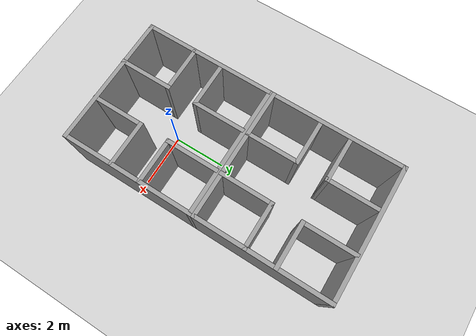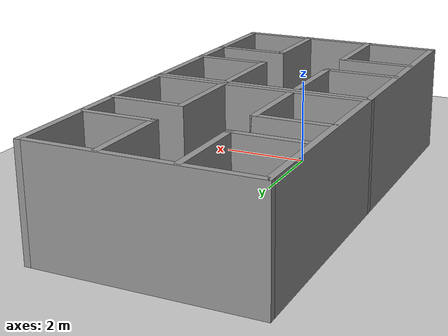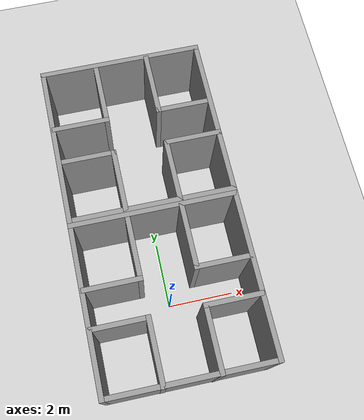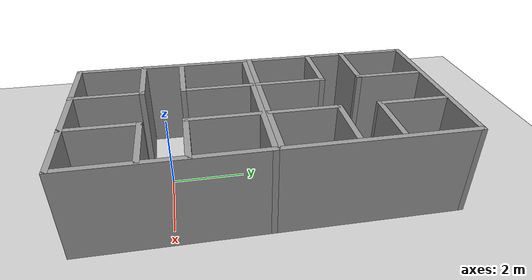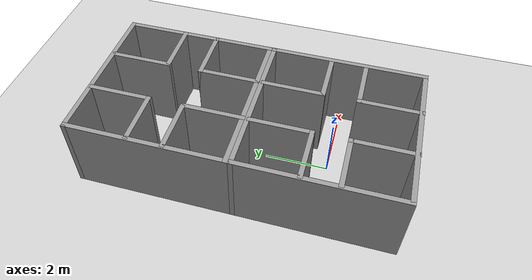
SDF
<sdf version="1.6">
 <world name="default">
  <light name="sun" type="directional">
   <pose>0 0 10 0 -0 0</pose>
   <diffuse>0.8 0.8 0.8 1</diffuse>
   <specular>0.2 0.2 0.2 1</specular>
   <attenuation>
    <range>1000</range>
    <constant>0.9</constant>
    <linear>0.01</linear>
    <quadratic>0.001</quadratic>
   </attenuation>
   <direction>-0.5 0.1 -0.9</direction>
  </light>
  <model name="ground_plane">
   <static>1</static>
   <link name="link">
    <collision name="collision">
     <geometry><plane><normal>0 0 1</normal><size>100 100</size></plane></geometry>
     <surface>
      <contact><collide_bitmask>65535</collide_bitmask></contact>
      <friction><ode><mu>100</mu><mu2>50</mu2></ode></friction>
     </surface>
    </collision>
    <visual name="visual">
     <cast_shadows>0</cast_shadows>
     <geometry><plane><normal>0 0 1</normal><size>100 100</size></plane></geometry>
     <material>
      <script><uri>file://media/materials/scripts/gazebo.material</uri><name>Gazebo/Grey</name></script>
     </material>
    </visual>
   </link>
  </model>
  <gravity>0 0 -9.8</gravity>
  <magnetic_field>6e-06 2.3e-05 -4.2e-05</magnetic_field>
  <atmosphere type="adiabatic"/>
  <physics name="default_physics" default="0" type="ode">
   <max_step_size>0.001</max_step_size>
   <real_time_factor>1</real_time_factor>
   <real_time_update_rate>1000</real_time_update_rate>
  </physics>
  <scene><ambient>0.4 0.4 0.4 1</ambient><background>0.7 0.7 0.7 1</background><shadows>1</shadows></scene>
  <spherical_coordinates>
   <surface_model>EARTH_WGS84</surface_model>
   <latitude_deg>0</latitude_deg>
   <longitude_deg>0</longitude_deg>
   <elevation>0</elevation>
   <heading_deg>0</heading_deg>
  </spherical_coordinates>
  <model name="train_ma_1">
   <link name="Wall_117">
    <collision name="Wall_117_Collision">
     <geometry><box><size>5 0.15 2.5</size></box></geometry>
     <pose>0 0 1.25 0 -0 0</pose>
    </collision>
    <visual name="Wall_117_Visual">
     <pose>0 0 1.25 0 -0 0</pose>
     <geometry><box><size>5 0.15 2.5</size></box></geometry>
     <material>
      <script><uri>file://media/materials/scripts/gazebo.material</uri><name>Gazebo/Grey</name></script>
      <ambient>1 1 1 1</ambient>
     </material>
     <meta><layer>0</layer></meta>
    </visual>
    <pose>-2.425 0.005246 0 0 0 -1.5708</pose>
   </link>
   <link name="Wall_118">
    <collision name="Wall_118_Collision">
     <geometry><box><size>5 0.15 2.5</size></box></geometry>
     <pose>0 0 1.25 0 -0 0</pose>
    </collision>
    <visual name="Wall_118_Visual">
     <pose>0 0 1.25 0 -0 0</pose>
     <geometry><box><size>5 0.15 2.5</size></box></geometry>
     <material>
      <script><uri>file://media/materials/scripts/gazebo.material</uri><name>Gazebo/Grey</name></script>
      <ambient>1 1 1 1</ambient>
     </material>
     <meta><layer>0</layer></meta>
    </visual>
    <pose>0 -2.41975 0 0 -0 0</pose>
   </link>
   <link name="Wall_119">
    <collision name="Wall_119_Collision">
     <geometry><box><size>5 0.15 2.5</size></box></geometry>
     <pose>0 0 1.25 0 -0 0</pose>
    </collision>
    <visual name="Wall_119_Visual">
     <pose>0 0 1.25 0 -0 0</pose>
     <geometry><box><size>5 0.15 2.5</size></box></geometry>
     <material>
      <script><uri>file://media/materials/scripts/gazebo.material</uri><name>Gazebo/Grey</name></script>
      <ambient>1 1 1 1</ambient>
     </material>
     <meta><layer>0</layer></meta>
    </visual>
    <pose>2.425 0.005246 0 0 -0 1.5708</pose>
   </link>
   <link name="Wall_120">
    <collision name="Wall_120_Collision">
     <geometry><box><size>5 0.15 2.5</size></box></geometry>
     <pose>0 0 1.25 0 -0 0</pose>
    </collision>
    <visual name="Wall_120_Visual">
     <pose>0 0 1.25 0 -0 0</pose>
     <geometry><box><size>5 0.15 2.5</size></box></geometry>
     <material>
      <script><uri>file://media/materials/scripts/gazebo.material</uri><name>Gazebo/Grey</name></script>
      <ambient>1 1 1 1</ambient>
     </material>
     <meta><layer>0</layer></meta>
    </visual>
    <pose>0 2.43025 0 0 -0 3.14159</pose>
   </link>
   <link name="Wall_135">
    <collision name="Wall_135_Collision">
     <geometry><box><size>2 0.15 2.5</size></box></geometry>
     <pose>0 0 1.25 0 -0 0</pose>
    </collision>
    <visual name="Wall_135_Visual">
     <pose>0 0 1.25 0 -0 0</pose>
     <geometry><box><size>2 0.15 2.5</size></box></geometry>
     <material>
      <script><uri>file://media/materials/scripts/gazebo.material</uri><name>Gazebo/Grey</name></script>
      <ambient>1 1 1 1</ambient>
     </material>
     <meta><layer>0</layer></meta>
    </visual>
    <pose>-0.780104 1.44475 0 0 -0 1.5708</pose>
   </link>
   <link name="Wall_137">
    <collision name="Wall_137_Collision">
     <geometry><box><size>2 0.15 2.5</size></box></geometry>
     <pose>0 0 1.25 0 -0 0</pose>
    </collision>
    <visual name="Wall_137_Visual">
     <pose>0 0 1.25 0 -0 0</pose>
     <geometry><box><size>2 0.15 2.5</size></box></geometry>
     <material>
      <script><uri>file://media/materials/scripts/gazebo.material</uri><name>Gazebo/Grey</name></script>
      <ambient>1 1 1 1</ambient>
     </material>
     <meta><layer>0</layer></meta>
    </visual>
    <pose>0.819896 1.44475 0 0 0 -1.5708</pose>
   </link>
   <link name="Wall_138">
    <collision name="Wall_138_Collision">
     <geometry><box><size>1.75 0.15 2.5</size></box></geometry>
     <pose>0 0 1.25 0 -0 0</pose>
    </collision>
    <visual name="Wall_138_Visual">
     <pose>0 0 1.25 0 -0 0</pose>
     <geometry><box><size>1.75 0.15 2.5</size></box></geometry>
     <material>
      <script><uri>file://media/materials/scripts/gazebo.material</uri><name>Gazebo/Grey</name></script>
      <ambient>1 1 1 1</ambient>
     </material>
     <meta><layer>0</layer></meta>
    </visual>
    <pose>1.6199 0.519754 0 0 -0 0</pose>
   </link>
   <link name="Wall_140">
    <collision name="Wall_140_Collision">
     <geometry><box><size>1.75 0.15 2.5</size></box></geometry>
     <pose>0 0 1.25 0 -0 0</pose>
    </collision>
    <visual name="Wall_140_Visual">
     <pose>0 0 1.25 0 -0 0</pose>
     <geometry><box><size>1.75 0.15 2.5</size></box></geometry>
     <material>
      <script><uri>file://media/materials/scripts/gazebo.material</uri><name>Gazebo/Grey</name></script>
      <ambient>1 1 1 1</ambient>
     </material>
     <meta><layer>0</layer></meta>
    </visual>
    <pose>1.6199 -0.580246 0 0 -0 3.14159</pose>
   </link>
   <link name="Wall_141">
    <collision name="Wall_141_Collision">
     <geometry><box><size>2 0.15 2.5</size></box></geometry>
     <pose>0 0 1.25 0 -0 0</pose>
    </collision>
    <visual name="Wall_141_Visual">
     <pose>0 0 1.25 0 -0 0</pose>
     <geometry><box><size>2 0.15 2.5</size></box></geometry>
     <material>
      <script><uri>file://media/materials/scripts/gazebo.material</uri><name>Gazebo/Grey</name></script>
      <ambient>1 1 1 1</ambient>
     </material>
     <meta><layer>0</layer></meta>
    </visual>
    <pose>0.819896 -1.50525 0 0 0 -1.5708</pose>
   </link>
   <link name="Wall_143">
    <collision name="Wall_143_Collision">
     <geometry><box><size>2 0.15 2.5</size></box></geometry>
     <pose>0 0 1.25 0 -0 0</pose>
    </collision>
    <visual name="Wall_143_Visual">
     <pose>0 0 1.25 0 -0 0</pose>
     <geometry><box><size>2 0.15 2.5</size></box></geometry>
     <material>
      <script><uri>file://media/materials/scripts/gazebo.material</uri><name>Gazebo/Grey</name></script>
      <ambient>1 1 1 1</ambient>
     </material>
     <meta><layer>0</layer></meta>
    </visual>
    <pose>-0.780104 -1.50525 0 0 -0 1.5708</pose>
   </link>
   <link name="Wall_144">
    <collision name="Wall_144_Collision">
     <geometry><box><size>1.75 0.15 2.5</size></box></geometry>
     <pose>0 0 1.25 0 -0 0</pose>
    </collision>
    <visual name="Wall_144_Visual">
     <pose>0 0 1.25 0 -0 0</pose>
     <geometry><box><size>1.75 0.15 2.5</size></box></geometry>
     <material>
      <script><uri>file://media/materials/scripts/gazebo.material</uri><name>Gazebo/Grey</name></script>
      <ambient>1 1 1 1</ambient>
     </material>
     <meta><layer>0</layer></meta>
    </visual>
    <pose>-1.5801 -0.580246 0 0 -0 3.14159</pose>
   </link>
   <link name="Wall_146">
    <collision name="Wall_146_Collision">
     <geometry><box><size>1.75 0.15 2.5</size></box></geometry>
     <pose>0 0 1.25 0 -0 0</pose>
    </collision>
    <visual name="Wall_146_Visual">
     <pose>0 0 1.25 0 -0 0</pose>
     <geometry><box><size>1.75 0.15 2.5</size></box></geometry>
     <material>
      <script><uri>file://media/materials/scripts/gazebo.material</uri><name>Gazebo/Grey</name></script>
      <ambient>1 1 1 1</ambient>
     </material>
     <meta><layer>0</layer></meta>
    </visual>
    <pose>-1.5801 0.519754 0 0 -0 3.14159</pose>
   </link>
   <static>1</static>
  </model>
  <model name="train_ma_1_0">
   <pose>0 5 0 0 -0 0</pose>
   <link name="Wall_117">
    <collision name="Wall_117_Collision">
     <geometry><box><size>5 0.15 2.5</size></box></geometry>
     <pose>0 0 1.25 0 -0 0</pose>
    </collision>
    <visual name="Wall_117_Visual">
     <pose>0 0 1.25 0 -0 0</pose>
     <geometry><box><size>5 0.15 2.5</size></box></geometry>
     <material>
      <script><uri>file://media/materials/scripts/gazebo.material</uri><name>Gazebo/Grey</name></script>
      <ambient>1 1 1 1</ambient>
     </material>
     <meta><layer>0</layer></meta>
    </visual>
    <pose>-2.425 0.005246 0 0 0 -1.5708</pose>
   </link>
   <link name="Wall_118">
    <collision name="Wall_118_Collision">
     <geometry><box><size>5 0.15 2.5</size></box></geometry>
     <pose>0 0 1.25 0 -0 0</pose>
    </collision>
    <visual name="Wall_118_Visual">
     <pose>0 0 1.25 0 -0 0</pose>
     <geometry><box><size>5 0.15 2.5</size></box></geometry>
     <material>
      <script><uri>file://media/materials/scripts/gazebo.material</uri><name>Gazebo/Grey</name></script>
      <ambient>1 1 1 1</ambient>
     </material>
     <meta><layer>0</layer></meta>
    </visual>
    <pose>0 -2.41975 0 0 -0 0</pose>
   </link>
   <link name="Wall_119">
    <collision name="Wall_119_Collision">
     <geometry><box><size>5 0.15 2.5</size></box></geometry>
     <pose>0 0 1.25 0 -0 0</pose>
    </collision>
    <visual name="Wall_119_Visual">
     <pose>0 0 1.25 0 -0 0</pose>
     <geometry><box><size>5 0.15 2.5</size></box></geometry>
     <material>
      <script><uri>file://media/materials/scripts/gazebo.material</uri><name>Gazebo/Grey</name></script>
      <ambient>1 1 1 1</ambient>
     </material>
     <meta><layer>0</layer></meta>
    </visual>
    <pose>2.425 0.005246 0 0 -0 1.5708</pose>
   </link>
   <link name="Wall_120">
    <collision name="Wall_120_Collision">
     <geometry><box><size>5 0.15 2.5</size></box></geometry>
     <pose>0 0 1.25 0 -0 0</pose>
    </collision>
    <visual name="Wall_120_Visual">
     <pose>0 0 1.25 0 -0 0</pose>
     <geometry><box><size>5 0.15 2.5</size></box></geometry>
     <material>
      <script><uri>file://media/materials/scripts/gazebo.material</uri><name>Gazebo/Grey</name></script>
      <ambient>1 1 1 1</ambient>
     </material>
     <meta><layer>0</layer></meta>
    </visual>
    <pose>0 2.43025 0 0 -0 3.14159</pose>
   </link>
   <link name="Wall_135">
    <collision name="Wall_135_Collision">
     <geometry><box><size>2 0.15 2.5</size></box></geometry>
     <pose>0 0 1.25 0 -0 0</pose>
    </collision>
    <visual name="Wall_135_Visual">
     <pose>0 0 1.25 0 -0 0</pose>
     <geometry><box><size>2 0.15 2.5</size></box></geometry>
     <material>
      <script><uri>file://media/materials/scripts/gazebo.material</uri><name>Gazebo/Grey</name></script>
      <ambient>1 1 1 1</ambient>
     </material>
     <meta><layer>0</layer></meta>
    </visual>
    <pose>-0.780104 1.44475 0 0 -0 1.5708</pose>
   </link>
   <link name="Wall_137">
    <collision name="Wall_137_Collision">
     <geometry><box><size>2 0.15 2.5</size></box></geometry>
     <pose>0 0 1.25 0 -0 0</pose>
    </collision>
    <visual name="Wall_137_Visual">
     <pose>0 0 1.25 0 -0 0</pose>
     <geometry><box><size>2 0.15 2.5</size></box></geometry>
     <material>
      <script><uri>file://media/materials/scripts/gazebo.material</uri><name>Gazebo/Grey</name></script>
      <ambient>1 1 1 1</ambient>
     </material>
     <meta><layer>0</layer></meta>
    </visual>
    <pose>0.819896 1.44475 0 0 0 -1.5708</pose>
   </link>
   <link name="Wall_138">
    <collision name="Wall_138_Collision">
     <geometry><box><size>1.75 0.15 2.5</size></box></geometry>
     <pose>0 0 1.25 0 -0 0</pose>
    </collision>
    <visual name="Wall_138_Visual">
     <pose>0 0 1.25 0 -0 0</pose>
     <geometry><box><size>1.75 0.15 2.5</size></box></geometry>
     <material>
      <script><uri>file://media/materials/scripts/gazebo.material</uri><name>Gazebo/Grey</name></script>
      <ambient>1 1 1 1</ambient>
     </material>
     <meta><layer>0</layer></meta>
    </visual>
    <pose>1.6199 0.519754 0 0 -0 0</pose>
   </link>
   <link name="Wall_140">
    <collision name="Wall_140_Collision">
     <geometry><box><size>1.75 0.15 2.5</size></box></geometry>
     <pose>0 0 1.25 0 -0 0</pose>
    </collision>
    <visual name="Wall_140_Visual">
     <pose>0 0 1.25 0 -0 0</pose>
     <geometry><box><size>1.75 0.15 2.5</size></box></geometry>
     <material>
      <script><uri>file://media/materials/scripts/gazebo.material</uri><name>Gazebo/Grey</name></script>
      <ambient>1 1 1 1</ambient>
     </material>
     <meta><layer>0</layer></meta>
    </visual>
    <pose>1.6199 -0.580246 0 0 -0 3.14159</pose>
   </link>
   <link name="Wall_141">
    <collision name="Wall_141_Collision">
     <geometry><box><size>2 0.15 2.5</size></box></geometry>
     <pose>0 0 1.25 0 -0 0</pose>
    </collision>
    <visual name="Wall_141_Visual">
     <pose>0 0 1.25 0 -0 0</pose>
     <geometry><box><size>2 0.15 2.5</size></box></geometry>
     <material>
      <script><uri>file://media/materials/scripts/gazebo.material</uri><name>Gazebo/Grey</name></script>
      <ambient>1 1 1 1</ambient>
     </material>
     <meta><layer>0</layer></meta>
    </visual>
    <pose>0.819896 -1.50525 0 0 0 -1.5708</pose>
   </link>
   <link name="Wall_143">
    <collision name="Wall_143_Collision">
     <geometry><box><size>2 0.15 2.5</size></box></geometry>
     <pose>0 0 1.25 0 -0 0</pose>
    </collision>
    <visual name="Wall_143_Visual">
     <pose>0 0 1.25 0 -0 0</pose>
     <geometry><box><size>2 0.15 2.5</size></box></geometry>
     <material>
      <script><uri>file://media/materials/scripts/gazebo.material</uri><name>Gazebo/Grey</name></script>
      <ambient>1 1 1 1</ambient>
     </material>
     <meta><layer>0</layer></meta>
    </visual>
    <pose>-0.780104 -1.50525 0 0 -0 1.5708</pose>
   </link>
   <link name="Wall_144">
    <collision name="Wall_144_Collision">
     <geometry><box><size>1.75 0.15 2.5</size></box></geometry>
     <pose>0 0 1.25 0 -0 0</pose>
    </collision>
    <visual name="Wall_144_Visual">
     <pose>0 0 1.25 0 -0 0</pose>
     <geometry><box><size>1.75 0.15 2.5</size></box></geometry>
     <material>
      <script><uri>file://media/materials/scripts/gazebo.material</uri><name>Gazebo/Grey</name></script>
      <ambient>1 1 1 1</ambient>
     </material>
     <meta><layer>0</layer></meta>
    </visual>
    <pose>-1.5801 -0.580246 0 0 -0 3.14159</pose>
   </link>
   <link name="Wall_146">
    <collision name="Wall_146_Collision">
     <geometry><box><size>1.75 0.15 2.5</size></box></geometry>
     <pose>0 0 1.25 0 -0 0</pose>
    </collision>
    <visual name="Wall_146_Visual">
     <pose>0 0 1.25 0 -0 0</pose>
     <geometry><box><size>1.75 0.15 2.5</size></box></geometry>
     <material>
      <script><uri>file://media/materials/scripts/gazebo.material</uri><name>Gazebo/Grey</name></script>
      <ambient>1 1 1 1</ambient>
     </material>
     <meta><layer>0</layer></meta>
    </visual>
    <pose>-1.5801 0.519754 0 0 -0 3.14159</pose>
   </link>
   <static>1</static>
  </model>
 </world>
</sdf>
